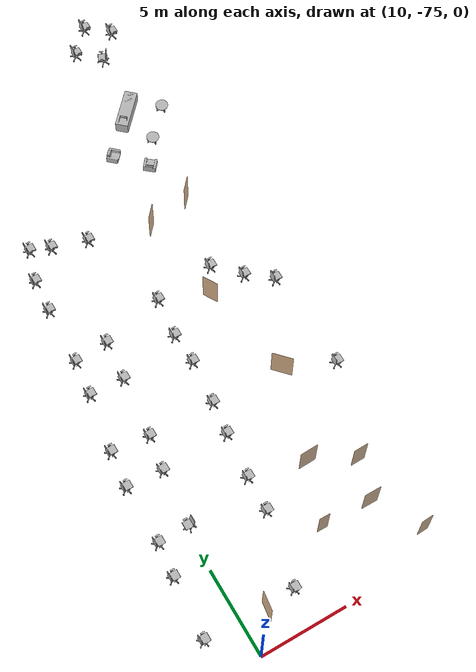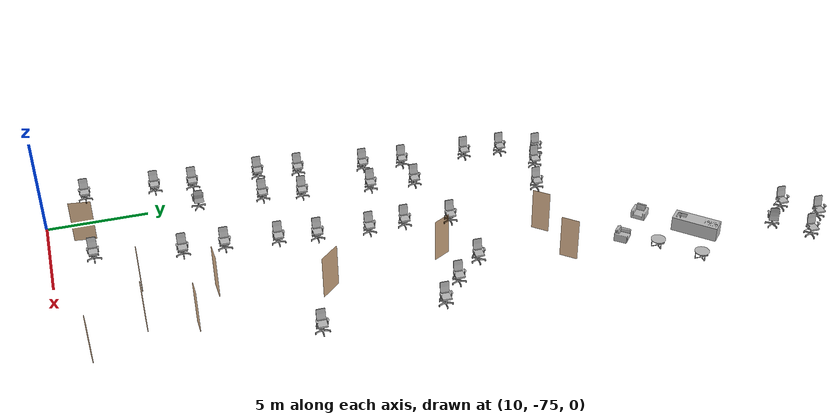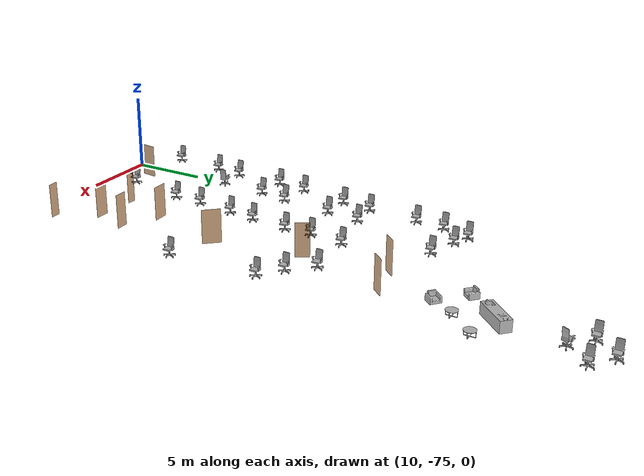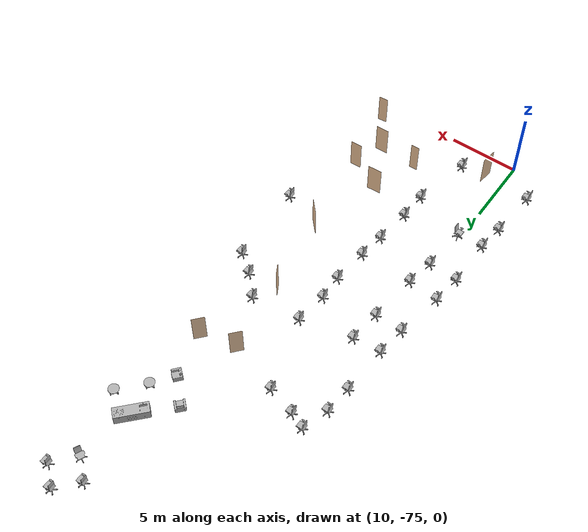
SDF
<sdf version="1.7">
 <world name="world">
  <include><uri>model://sun</uri></include>
  <include>
   <name>OpenRobotics/OfficeChairBlue_38</name>
   <uri>model://OfficeChairBlue</uri>
   <pose>8.028922103167405 -72.9125392063988 0.0 0 0 1.5708</pose>
   <static>True</static>
  </include>
  <include>
   <name>OpenRobotics/OfficeChairBlue_39</name>
   <uri>model://OfficeChairBlue</uri>
   <pose>8.29650027700802 -69.4069201848479 0.0 0 0 1.5708</pose>
   <static>True</static>
  </include>
  <include>
   <name>OpenRobotics/OfficeChairBlue_40</name>
   <uri>model://OfficeChairBlue</uri>
   <pose>8.510562816080512 -67.48016022220186 0.0 0 0 1.5708</pose>
   <static>True</static>
  </include>
  <include>
   <name>OpenRobotics/OfficeChairBlue_41</name>
   <uri>model://OfficeChairBlue</uri>
   <pose>10.113567971703935 -67.44379324387877 0.0 0 0 -1.5708</pose>
   <static>True</static>
  </include>
  <include>
   <name>OpenRobotics/OfficeChairBlue_42</name>
   <uri>model://OfficeChairBlue</uri>
   <pose>14.157004339349937 -68.76463401213363 0.0 0 0 1.5708</pose>
   <static>True</static>
  </include>
  <include>
   <name>OpenRobotics/OfficeChairBlue_43</name>
   <uri>model://OfficeChairBlue</uri>
   <pose>14.237327069250528 -66.73094133544815 0.0 0 0 1.5708</pose>
   <static>True</static>
  </include>
  <include>
   <name>OpenRobotics/OfficeChairBlue_44</name>
   <uri>model://OfficeChairBlue</uri>
   <pose>14.504905243091143 -64.13518666045215 0.0 0 0 1.5708</pose>
   <static>True</static>
  </include>
  <include>
   <name>OpenRobotics/OfficeChairBlue_45</name>
   <uri>model://OfficeChairBlue</uri>
   <pose>14.7457748772961 -62.23523379293858 0.0 0 0 1.5708</pose>
   <static>True</static>
  </include>
  <include>
   <name>OpenRobotics/OfficeChairBlue_46</name>
   <uri>model://OfficeChairBlue</uri>
   <pose>14.986545956004248 -59.66618765757825 0.0 0 0 1.5708</pose>
   <static>True</static>
  </include>
  <include>
   <name>OpenRobotics/OfficeChairBlue_47</name>
   <uri>model://OfficeChairBlue</uri>
   <pose>14.906321781600468 -57.84655751996525 0.0 0 0 1.5708</pose>
   <static>True</static>
  </include>
  <include>
   <name>OpenRobotics/OfficeChairBlue_48</name>
   <uri>model://OfficeChairBlue</uri>
   <pose>15.173899955441081 -55.545188113942345 0.0 0 0 1.5708</pose>
   <static>True</static>
  </include>
  <include>
   <name>OpenRobotics/OfficeChairBlue_49</name>
   <uri>model://OfficeChairBlue</uri>
   <pose>9.313395893099166 -58.59577640671898 0.0 0 0 1.5708</pose>
   <static>True</static>
  </include>
  <include>
   <name>OpenRobotics/OfficeChairBlue_50</name>
   <uri>model://OfficeChairBlue</uri>
   <pose>9.554364082800936 -56.52354853078057 0.0 0 0 1.5708</pose>
   <static>True</static>
  </include>
  <include>
   <name>OpenRobotics/OfficeChairBlue_51</name>
   <uri>model://OfficeChairBlue</uri>
   <pose>11.528726350406473 -56.383796836303226 0.0 0 0 1.5708</pose>
   <static>True</static>
  </include>
  <include>
   <name>OpenRobotics/OfficeChairBlue_52</name>
   <uri>model://OfficeChairBlue</uri>
   <pose>11.30165448575499 -58.672649694231204 0.0 0 0 1.5708</pose>
   <static>True</static>
  </include>
  <include>
   <name>OpenRobotics/OfficeChairBlue_53</name>
   <uri>model://OfficeChairBlue</uri>
   <pose>9.711658655710556 -53.11648500604023 0.0 0 0 1.5708</pose>
   <static>True</static>
  </include>
  <include>
   <name>OpenRobotics/OfficeChairBlue_54</name>
   <uri>model://OfficeChairBlue</uri>
   <pose>9.868953228620176 -51.15956706137016 0.0 0 0 1.5708</pose>
   <static>True</static>
  </include>
  <include>
   <name>OpenRobotics/OfficeChairBlue_55</name>
   <uri>model://OfficeChairBlue</uri>
   <pose>13.595040896536242 -50.38038730358603 0.0 0 0 1.5708</pose>
   <static>True</static>
  </include>
  <include>
   <name>OpenRobotics/OfficeChairBlue_56</name>
   <uri>model://OfficeChairBlue</uri>
   <pose>10.464129873859024 -49.30997605272676 0.0 0 0 1.5708</pose>
   <static>True</static>
  </include>
  <include>
   <name>OpenRobotics/OfficeChairBlue_57</name>
   <uri>model://OfficeChairBlue</uri>
   <pose>11.588056759486415 -49.76490822600421 0.0 0 0 1.5708</pose>
   <static>True</static>
  </include>
  <include>
   <name>OpenRobotics/OfficeChairBlue_58</name>
   <uri>model://OfficeChairBlue</uri>
   <pose>8.506029263227227 -64.07161836500936 0.0 0 0 1.5708</pose>
   <static>True</static>
  </include>
  <include>
   <name>OpenRobotics/OfficeChairBlue_59</name>
   <uri>model://OfficeChairBlue</uri>
   <pose>8.750644006310987 -61.97494872586194 0.0 0 0 1.5708</pose>
   <static>True</static>
  </include>
  <include>
   <name>OpenRobotics/OfficeChairBlue_60</name>
   <uri>model://OfficeChairBlue</uri>
   <pose>10.93473237112935 -62.20211914601024 0.0 0 0 1.5708</pose>
   <static>True</static>
  </include>
  <include>
   <name>OpenRobotics/OfficeChairBlue_61</name>
   <uri>model://OfficeChairBlue</uri>
   <pose>10.602698902374643 -64.19392573655124 0.0 0 0 1.5897</pose>
   <static>True</static>
  </include>
  <include>
   <name>OpenRobotics/OfficeChairBlue_70</name>
   <uri>model://OfficeChairBlue</uri>
   <pose>21.69068507104438 -63.54355801309849 0.0 0 0 1.5708</pose>
   <static>True</static>
  </include>
  <include>
   <name>OpenRobotics/OfficeChairBlue_71</name>
   <uri>model://OfficeChairBlue</uri>
   <pose>18.676463756590845 -55.192457990857434 0.0 0 0 1.5708</pose>
   <static>True</static>
  </include>
  <include>
   <name>OpenRobotics/OfficeChairBlue_72</name>
   <uri>model://OfficeChairBlue</uri>
   <pose>20.02253473202919 -56.58721538172019 0.0 0 0 1.5708</pose>
   <static>True</static>
  </include>
  <include>
   <name>OpenRobotics/OfficeChairBlue_73</name>
   <uri>model://OfficeChairBlue</uri>
   <pose>21.401030465918204 -57.65752807708264 0.0 0 0 1.5708</pose>
   <static>True</static>
  </include>
  <include>
   <name>OpenRobotics/KitchenCountertop</name>
   <uri>model://KitchenCountertop</uri>
   <pose>19.355018352131406 -44.11886092472203 0.0 0 0 2.3925</pose>
   <static>True</static>
  </include>
  <include>
   <name>OpenRobotics/OfficeChairBlue_124</name>
   <uri>model://OfficeChairBlue</uri>
   <pose>21.36308659964615 -38.76453789399904 0.0 0 0 1.5708</pose>
   <static>True</static>
  </include>
  <include>
   <name>OpenRobotics/OfficeChairBlue_125</name>
   <uri>model://OfficeChairBlue</uri>
   <pose>19.836954731534945 -40.1453004043147 0.0 0 0 -1.9996</pose>
   <static>True</static>
  </include>
  <include>
   <name>OpenRobotics/OfficeChairBlue_126</name>
   <uri>model://OfficeChairBlue</uri>
   <pose>18.81956633795975 -39.06976426762128 0.0 0 0 1.5708</pose>
   <static>True</static>
  </include>
  <include>
   <name>OpenRobotics/OfficeChairBlue_127</name>
   <uri>model://OfficeChairBlue</uri>
   <pose>20.098619575566925 -37.703489415336776 0.0 0 0 1.5708</pose>
   <static>True</static>
  </include>
  <include>
   <name>OpenRobotics/CoffeeTable</name>
   <uri>model://CoffeeTable</uri>
   <pose>21.35066860704802 -44.73414289131023 0.0 0 0 1.5708</pose>
   <static>True</static>
  </include>
  <include>
   <name>OpenRobotics/CoffeeTable_2</name>
   <uri>model://CoffeeTable</uri>
   <pose>19.844543504789357 -46.35922447821921 0.0 0 0 1.5708</pose>
   <static>True</static>
  </include>
  <include>
   <name>OpenRobotics/MiniSofa</name>
   <uri>model://MiniSofa</uri>
   <pose>17.321424230942736 -46.24795532232011 0.0 0 0 2.3973</pose>
   <static>True</static>
  </include>
  <include>
   <name>OpenRobotics/MiniSofa_2</name>
   <uri>model://MiniSofa</uri>
   <pose>18.8565246492637 -47.83105226758781 0.0 0 0 -2.2655</pose>
   <static>True</static>
  </include>
  <include>
   <name>OpenRobotics/OfficeChairBlue_184</name>
   <uri>model://OfficeChairBlue</uri>
   <pose>13.274439865411557 -72.93106763979918 0.0 0 0 1.5708</pose>
   <static>True</static>
  </include>
  <model name="door_13">
   <pose>20.436221429891432 -73.66220159288817 0.0 0 0 -3.077929712993543</pose>
   <link name="right">
    <pose>0 0 1.11 0 0 0</pose>
    <visual name="right_visual">
     <geometry><box><size>0.6669693355595687 0.03 2.2</size></box></geometry>
     <material><ambient>0.5 0.25 0 0.6</ambient><diffuse>0.5 0.25 0 0.6</diffuse></material>
    </visual>
    <collision name="right_collision">
     <geometry><box><size>0.6669693355595687 0.03 2.2</size></box></geometry>
     <surface><contact><collide_bitmask>0x02</collide_bitmask></contact></surface>
    </collision>
    <inertial>
     <mass>50.0</mass>
     <inertia><ixx>20.17041666666667</ixx><iyy>22.02020039406989</iyy><izz>1.8572837274032195</izz></inertia>
    </inertial>
   </link>
   <joint name="right_joint" type="revolute">
    <parent>world</parent>
    <child>right</child>
    <axis><xyz>0 0 -1</xyz><limit><lower>0</lower><upper>1.57</upper></limit></axis>
    <pose>0.33848466777978437 0 0 0 0 0</pose>
   </joint>
   <plugin name="door" filename="libdoor.so">
    <v_max_door>0.5</v_max_door>
    <a_max_door>0.3</a_max_door>
    <a_nom_door>0.15</a_nom_door>
    <dx_min_door>0.01</dx_min_door>
    <f_max_door>500.0</f_max_door>
    <door name="door_13" type="SwingDoor" left_joint_name="empty_joint" right_joint_name="right_joint"/>
   </plugin>
  </model>
  <model name="door_14">
   <pose>16.052522209507043 -70.98361102282291 0.0 0 0 -0.007404887191597076</pose>
   <link name="right">
    <pose>0 0 1.11 0 0 0</pose>
    <visual name="right_visual">
     <geometry><box><size>0.6022435314874971 0.03 2.2</size></box></geometry>
     <material><ambient>0.5 0.25 0 0.6</ambient><diffuse>0.5 0.25 0 0.6</diffuse></material>
    </visual>
    <collision name="right_collision">
     <geometry><box><size>0.6022435314874971 0.03 2.2</size></box></geometry>
     <surface><contact><collide_bitmask>0x02</collide_bitmask></contact></surface>
    </collision>
    <inertial>
     <mass>50.0</mass>
     <inertia><ixx>20.17041666666667</ixx><iyy>21.677905296743887</iyy><izz>1.5149886300772164</izz></inertia>
    </inertial>
   </link>
   <joint name="right_joint" type="revolute">
    <parent>world</parent>
    <child>right</child>
    <axis><xyz>0 0 -1</xyz><limit><lower>0</lower><upper>1.57</upper></limit></axis>
    <pose>0.30612176574374855 0 0 0 0 0</pose>
   </joint>
   <plugin name="door" filename="libdoor.so">
    <v_max_door>0.5</v_max_door>
    <a_max_door>0.3</a_max_door>
    <a_nom_door>0.15</a_nom_door>
    <dx_min_door>0.01</dx_min_door>
    <f_max_door>500.0</f_max_door>
    <door name="door_14" type="SwingDoor" left_joint_name="empty_joint" right_joint_name="right_joint"/>
   </plugin>
  </model>
  <model name="door_15">
   <pose>19.579724884859438 -68.82130342279969 0.0 0 0 0.026284576148479635</pose>
   <link name="right">
    <pose>0 0 1.11 0 0 0</pose>
    <visual name="right_visual">
     <geometry><box><size>0.8149973675581268 0.03 2.2</size></box></geometry>
     <material><ambient>0.5 0.25 0 0.6</ambient><diffuse>0.5 0.25 0 0.6</diffuse></material>
    </visual>
    <collision name="right_collision">
     <geometry><box><size>0.8149973675581268 0.03 2.2</size></box></geometry>
     <surface><contact><collide_bitmask>0x02</collide_bitmask></contact></surface>
    </collision>
    <inertial>
     <mass>50.0</mass>
     <inertia><ixx>20.17041666666667</ixx><iyy>22.93425295469449</iyy><izz>2.7713362880278187</izz></inertia>
    </inertial>
   </link>
   <joint name="right_joint" type="revolute">
    <parent>world</parent>
    <child>right</child>
    <axis><xyz>0 0 -1</xyz><limit><lower>0</lower><upper>1.57</upper></limit></axis>
    <pose>0.4124986837790634 0 0 0 0 0</pose>
   </joint>
   <plugin name="door" filename="libdoor.so">
    <v_max_door>0.5</v_max_door>
    <a_max_door>0.3</a_max_door>
    <a_nom_door>0.15</a_nom_door>
    <dx_min_door>0.01</dx_min_door>
    <f_max_door>500.0</f_max_door>
    <door name="door_15" type="SwingDoor" left_joint_name="empty_joint" right_joint_name="right_joint"/>
   </plugin>
  </model>
  <model name="door_16">
   <pose>17.226121065526947 -67.6001022618203 0.0 0 0 0.03751847835581331</pose>
   <link name="right">
    <pose>0 0 1.11 0 0 0</pose>
    <visual name="right_visual">
     <geometry><box><size>1.0147127386472543 0.03 2.2</size></box></geometry>
     <material><ambient>0.5 0.25 0 0.6</ambient><diffuse>0.5 0.25 0 0.6</diffuse></material>
    </visual>
    <collision name="right_collision">
     <geometry><box><size>1.0147127386472543 0.03 2.2</size></box></geometry>
     <surface><contact><collide_bitmask>0x02</collide_bitmask></contact></surface>
    </collision>
    <inertial>
     <mass>50.0</mass>
     <inertia><ixx>20.17041666666667</ixx><iyy>24.45684142488755</iyy><izz>4.293924758220879</izz></inertia>
    </inertial>
   </link>
   <joint name="right_joint" type="revolute">
    <parent>world</parent>
    <child>right</child>
    <axis><xyz>0 0 -1</xyz><limit><lower>0</lower><upper>1.57</upper></limit></axis>
    <pose>0.5123563693236272 0 0 0 0 0</pose>
   </joint>
   <plugin name="door" filename="libdoor.so">
    <v_max_door>0.5</v_max_door>
    <a_max_door>0.3</a_max_door>
    <a_nom_door>0.15</a_nom_door>
    <dx_min_door>0.01</dx_min_door>
    <f_max_door>500.0</f_max_door>
    <door name="door_16" type="SwingDoor" left_joint_name="empty_joint" right_joint_name="right_joint"/>
   </plugin>
  </model>
  <model name="door_17">
   <pose>18.750281823701936 -62.48625464331502 0.0 0 0 -0.8215326084566595</pose>
   <link name="right">
    <pose>0 0 1.11 0 0 0</pose>
    <visual name="right_visual">
     <geometry><box><size>1.1898566496465135 0.03 2.2</size></box></geometry>
     <material><ambient>0.5 0.25 0 0.6</ambient><diffuse>0.5 0.25 0 0.6</diffuse></material>
    </visual>
    <collision name="right_collision">
     <geometry><box><size>1.1898566496465135 0.03 2.2</size></box></geometry>
     <surface><contact><collide_bitmask>0x02</collide_bitmask></contact></surface>
    </collision>
    <inertial>
     <mass>50.0</mass>
     <inertia><ixx>20.17041666666667</ixx><iyy>26.065661861283445</iyy><izz>5.902745194616775</izz></inertia>
    </inertial>
   </link>
   <joint name="right_joint" type="revolute">
    <parent>world</parent>
    <child>right</child>
    <axis><xyz>0 0 -1</xyz><limit><lower>0</lower><upper>1.57</upper></limit></axis>
    <pose>0.5999283248232568 0 0 0 0 0</pose>
   </joint>
   <plugin name="door" filename="libdoor.so">
    <v_max_door>0.5</v_max_door>
    <a_max_door>0.3</a_max_door>
    <a_nom_door>0.15</a_nom_door>
    <dx_min_door>0.01</dx_min_door>
    <f_max_door>500.0</f_max_door>
    <door name="door_17" type="SwingDoor" left_joint_name="empty_joint" right_joint_name="right_joint"/>
   </plugin>
  </model>
  <model name="door_18">
   <pose>17.65848403003478 -56.75653372524069 0.0 0 0 2.0952310065969777</pose>
   <link name="right">
    <pose>0 0 1.11 0 0 0</pose>
    <visual name="right_visual">
     <geometry><box><size>0.9099651539303446 0.03 2.2</size></box></geometry>
     <material><ambient>0.5 0.25 0 0.6</ambient><diffuse>0.5 0.25 0 0.6</diffuse></material>
    </visual>
    <collision name="right_collision">
     <geometry><box><size>0.9099651539303446 0.03 2.2</size></box></geometry>
     <surface><contact><collide_bitmask>0x02</collide_bitmask></contact></surface>
    </collision>
    <inertial>
     <mass>50.0</mass>
     <inertia><ixx>20.17041666666667</ixx><iyy>23.616819089031154</iyy><izz>3.4539024223644823</izz></inertia>
    </inertial>
   </link>
   <joint name="right_joint" type="revolute">
    <parent>world</parent>
    <child>right</child>
    <axis><xyz>0 0 -1</xyz><limit><lower>0</lower><upper>1.57</upper></limit></axis>
    <pose>0.4599825769651723 0 0 0 0 0</pose>
   </joint>
   <plugin name="door" filename="libdoor.so">
    <v_max_door>0.5</v_max_door>
    <a_max_door>0.3</a_max_door>
    <a_nom_door>0.15</a_nom_door>
    <dx_min_door>0.01</dx_min_door>
    <f_max_door>500.0</f_max_door>
    <door name="door_18" type="SwingDoor" left_joint_name="empty_joint" right_joint_name="right_joint"/>
   </plugin>
  </model>
  <model name="door_19">
   <pose>19.477867778905747 -50.905343157347374 0.0 0 0 -2.2895953695394513</pose>
   <link name="right">
    <pose>0 0 1.11 0 0 0</pose>
    <visual name="right_visual">
     <geometry><box><size>0.8884744718691805 0.03 2.2</size></box></geometry>
     <material><ambient>0.5 0.25 0 0.6</ambient><diffuse>0.5 0.25 0 0.6</diffuse></material>
    </visual>
    <collision name="right_collision">
     <geometry><box><size>0.8884744718691805 0.03 2.2</size></box></geometry>
     <surface><contact><collide_bitmask>0x02</collide_bitmask></contact></surface>
    </collision>
    <inertial>
     <mass>50.0</mass>
     <inertia><ixx>20.17041666666667</ixx><iyy>23.455778696513416</iyy><izz>3.2928620298467473</izz></inertia>
    </inertial>
   </link>
   <joint name="right_joint" type="revolute">
    <parent>world</parent>
    <child>right</child>
    <axis><xyz>0 0 -1</xyz><limit><lower>0</lower><upper>1.57</upper></limit></axis>
    <pose>0.44923723593459025 0 0 0 0 0</pose>
   </joint>
   <plugin name="door" filename="libdoor.so">
    <v_max_door>0.5</v_max_door>
    <a_max_door>0.3</a_max_door>
    <a_nom_door>0.15</a_nom_door>
    <dx_min_door>0.01</dx_min_door>
    <f_max_door>500.0</f_max_door>
    <door name="door_19" type="SwingDoor" left_joint_name="empty_joint" right_joint_name="right_joint"/>
   </plugin>
  </model>
  <model name="door_20">
   <pose>16.942133401467373 -51.44631427934041 0.0 0 0 0.8519972840503316</pose>
   <link name="right">
    <pose>0 0 1.11 0 0 0</pose>
    <visual name="right_visual">
     <geometry><box><size>0.8884744718691698 0.03 2.2</size></box></geometry>
     <material><ambient>0.5 0.25 0 0.6</ambient><diffuse>0.5 0.25 0 0.6</diffuse></material>
    </visual>
    <collision name="right_collision">
     <geometry><box><size>0.8884744718691698 0.03 2.2</size></box></geometry>
     <surface><contact><collide_bitmask>0x02</collide_bitmask></contact></surface>
    </collision>
    <inertial>
     <mass>50.0</mass>
     <inertia><ixx>20.17041666666667</ixx><iyy>23.455778696513338</iyy><izz>3.292862029846668</izz></inertia>
    </inertial>
   </link>
   <joint name="right_joint" type="revolute">
    <parent>world</parent>
    <child>right</child>
    <axis><xyz>0 0 -1</xyz><limit><lower>0</lower><upper>1.57</upper></limit></axis>
    <pose>0.4492372359345849 0 0 0 0 0</pose>
   </joint>
   <plugin name="door" filename="libdoor.so">
    <v_max_door>0.5</v_max_door>
    <a_max_door>0.3</a_max_door>
    <a_nom_door>0.15</a_nom_door>
    <dx_min_door>0.01</dx_min_door>
    <f_max_door>500.0</f_max_door>
    <door name="door_20" type="SwingDoor" left_joint_name="empty_joint" right_joint_name="right_joint"/>
   </plugin>
  </model>
  <model name="door_63">
   <pose>11.387299212483349 -73.19977920185312 0.0 0 0 -1.701602482828176</pose>
   <link name="right">
    <pose>0 0 1.11 0 0 0</pose>
    <visual name="right_visual">
     <geometry><box><size>1.079574967380696 0.03 2.2</size></box></geometry>
     <material><ambient>0.5 0.25 0 0.6</ambient><diffuse>0.5 0.25 0 0.6</diffuse></material>
    </visual>
    <collision name="right_collision">
     <geometry><box><size>1.079574967380696 0.03 2.2</size></box></geometry>
     <surface><contact><collide_bitmask>0x02</collide_bitmask></contact></surface>
    </collision>
    <inertial>
     <mass>50.0</mass>
     <inertia><ixx>20.17041666666667</ixx><iyy>25.022842125812634</iyy><izz>4.859925459145962</izz></inertia>
    </inertial>
   </link>
   <joint name="right_joint" type="revolute">
    <parent>world</parent>
    <child>right</child>
    <axis><xyz>0 0 -1</xyz><limit><lower>0</lower><upper>1.57</upper></limit></axis>
    <pose>0.544787483690348 0 0 0 0 0</pose>
   </joint>
   <plugin name="door" filename="libdoor.so">
    <v_max_door>0.5</v_max_door>
    <a_max_door>0.3</a_max_door>
    <a_nom_door>0.15</a_nom_door>
    <dx_min_door>0.01</dx_min_door>
    <f_max_door>500.0</f_max_door>
    <door name="door_63" type="SwingDoor" left_joint_name="empty_joint" right_joint_name="right_joint"/>
   </plugin>
  </model>
  <model name="door_65">
   <pose>18.85243459614606 -71.08670007248674 0.0 0 0 3.141592653589793</pose>
   <link name="right">
    <pose>0 0 1.11 0 0 0</pose>
    <visual name="right_visual">
     <geometry><box><size>0.9376111018333384 0.03 2.2</size></box></geometry>
     <material><ambient>0.5 0.25 0 0.6</ambient><diffuse>0.5 0.25 0 0.6</diffuse></material>
    </visual>
    <collision name="right_collision">
     <geometry><box><size>0.9376111018333384 0.03 2.2</size></box></geometry>
     <surface><contact><collide_bitmask>0x02</collide_bitmask></contact></surface>
    </collision>
    <inertial>
     <mass>50.0</mass>
     <inertia><ixx>20.17041666666667</ixx><iyy>23.829644076171366</iyy><izz>3.6667274095046953</izz></inertia>
    </inertial>
   </link>
   <joint name="right_joint" type="revolute">
    <parent>world</parent>
    <child>right</child>
    <axis><xyz>0 0 -1</xyz><limit><lower>0</lower><upper>1.57</upper></limit></axis>
    <pose>0.4738055509166692 0 0 0 0 0</pose>
   </joint>
   <plugin name="door" filename="libdoor.so">
    <v_max_door>0.5</v_max_door>
    <a_max_door>0.3</a_max_door>
    <a_nom_door>0.15</a_nom_door>
    <dx_min_door>0.01</dx_min_door>
    <f_max_door>500.0</f_max_door>
    <door name="door_65" type="SwingDoor" left_joint_name="empty_joint" right_joint_name="right_joint"/>
   </plugin>
  </model>
 </world>
</sdf>
